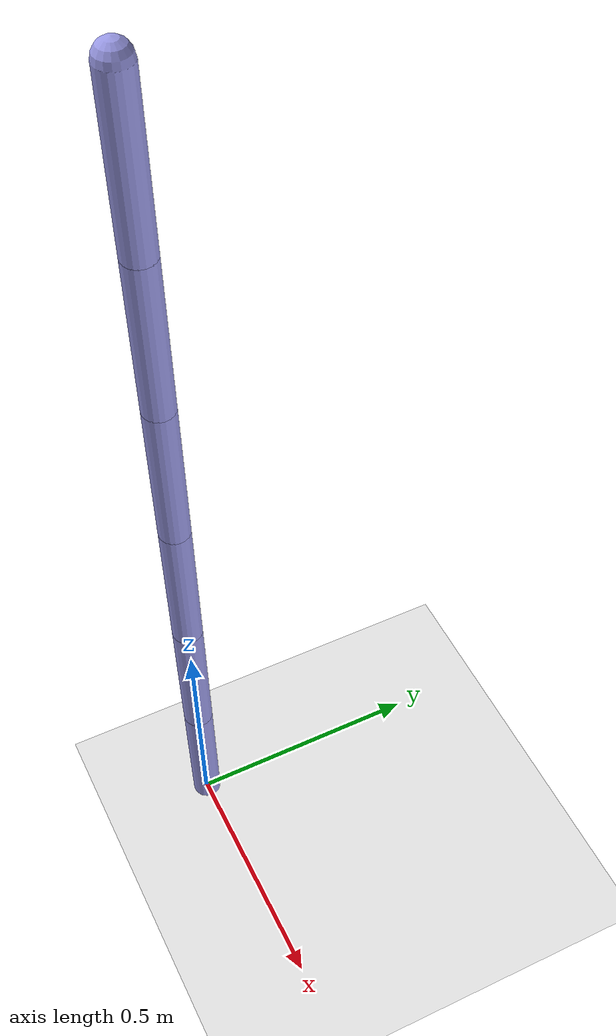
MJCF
<mujoco model="six_dof_arm">
    <compiler angle="radian" coordinate="local"/>
    <option gravity="0 0 -9.81" timestep="0.001"/>
    <!-- 积分器使用 RK4，步长小但可能仍然不够稳：RK4 精度高但容易震荡，搭配高 kp 时数值不稳定。 -->

    <default>
      <joint limited="true" damping="10"/>
      <geom type="capsule" size="0.03" rgba="0.6 0.6 0.9 1"/>
    </default>

    <worldbody>
      <!-- 地面 -->
      <geom name="floor" type="plane" pos="0 0 0" size="3 3 0.1" rgba="0.9 0.9 0.9 1"/>

      <body name="base" pos="0 0 0">
        <!-- 1号关节 -->
        <joint name="joint1" type="hinge" axis="0 0 1" range="-3.14 3.14"/>
        <geom type="capsule" size="0.03" fromto="0 0 0 0 0 0.3"/>

        <!-- 2号关节 -->
        <body pos="0 0 0.3">
          <joint name="joint2" type="hinge" axis="0 1 0" range="-3.14 3.14"/>
          <geom type="capsule" size="0.03" fromto="0 0 0 0 0 0.3"/>

          <!-- 3号关节 -->
          <body pos="0 0 0.3">
            <joint name="joint3" type="hinge" axis="0 1 0" range="-3.14 3.14"/>
            <geom type="capsule" size="0.03" fromto="0 0 0 0 0 0.3"/>

            <!-- 4号关节 -->
            <body pos="0 0 0.3">
              <joint name="joint4" type="hinge" axis="1 0 0" range="-3.14 3.14"/>
              <geom type="capsule" size="0.03" fromto="0 0 0 0 0 0.3"/>

              <!-- 5号关节 -->
              <body pos="0 0 0.3">
                <joint name="joint5" type="hinge" axis="0 1 0" range="-3.14 3.14"/>
                <geom type="capsule" size="0.03" fromto="0 0 0 0 0 0.3"/>

                <!-- 6号关节 -->
                <body pos="0 0 0.3">
                  <joint name="joint6" type="hinge" axis="1 0 0" range="-3.14 3.14"/>
                  <geom type="capsule" size="0.03" fromto="0 0 0 0 0 0.3"/>

                  <!-- 末端执行器 -->
                  <site name="ee_site" pos="0 0 0.3" size="0.02" rgba="1 0 0 1"/>
                </body>
              </body>
            </body>
          </body>
        </body>
      </body>
    </worldbody>

    <actuator>
      <position joint="joint1" kp="2000"/>
      <position joint="joint2" kp="2000"/>
      <position joint="joint3" kp="2000"/>
      <position joint="joint4" kp="2000"/>
      <position joint="joint5" kp="2000"/>
      <position joint="joint6" kp="2000"/>
    </actuator>
  </mujoco>
